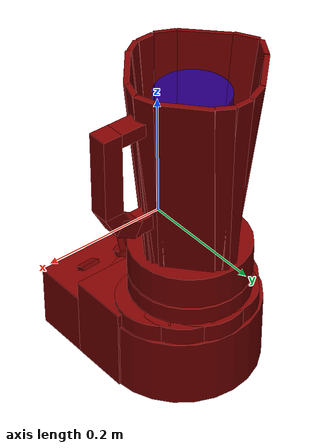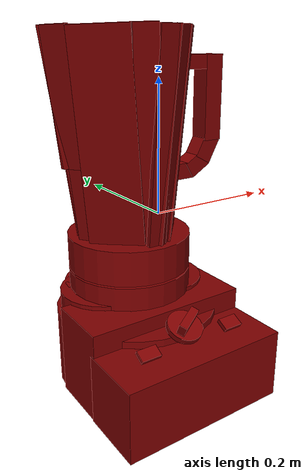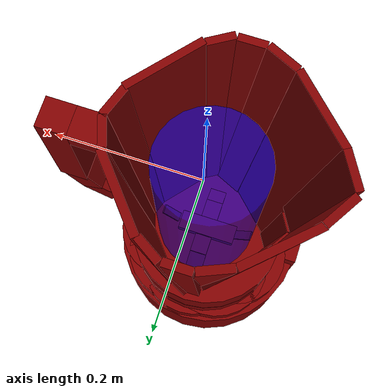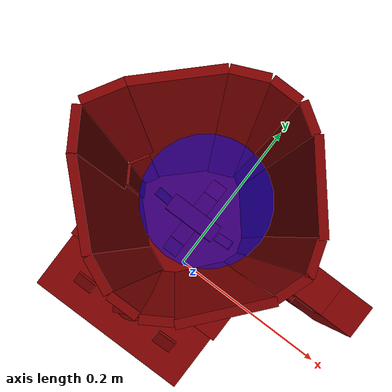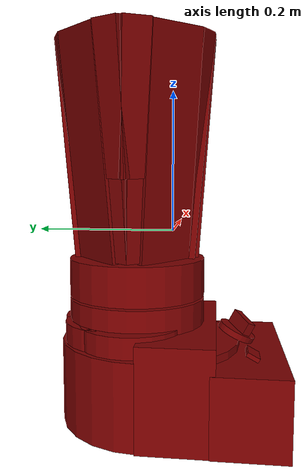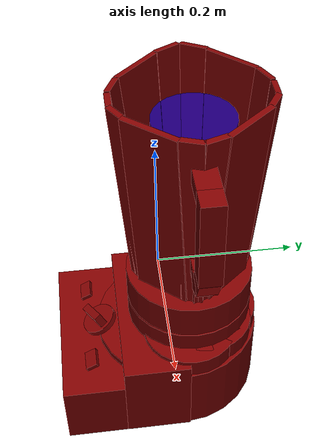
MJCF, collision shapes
<?xml version='1.0' encoding='UTF-8'?>
<mujoco model="model">
  <option timestep="0.0005" gravity="0.0 0.0 -9.81"/>
  <compiler angle="radian"/>
  <asset>
    <mesh file="visuals/blade.obj" name="blade_vis"/>
    <mesh file="visuals/Body001.obj" name="Body001_vis"/>
    <mesh file="visuals/knob_speed.obj" name="knob_speed_vis"/>
    <mesh file="visuals/pitcher.obj" name="pitcher_vis"/>
    <mesh file="visuals/pitcher_main.obj" name="pitcher_main_vis"/>
    <mesh file="visuals/power_button.obj" name="power_button_vis"/>
    <mesh file="visuals/pulse_button.obj" name="pulse_button_vis"/>
    <texture file="visuals/T_BC001.png" name="Body001_material" type="2d"/>
    <material name="Body001_material" rgba="1 1 1 1.0" texture="Body001_material" shininess="0.141421377658844" specular="0.33333333333333337"/>
    <texture file="visuals/T_BC001.png" name="knob_speed_material" type="2d"/>
    <material name="knob_speed_material" rgba="1 1 1 1.0" texture="knob_speed_material" shininess="0.141421377658844" specular="0.33333333333333337"/>
    <texture file="visuals/T_BC001.png" name="pitcher_material" type="2d"/>
    <material name="pitcher_material" rgba="1 1 1 1.0" texture="pitcher_material" shininess="0.141421377658844" specular="0.33333333333333337"/>
    <texture file="visuals/T_BC001.png" name="blade_material" type="2d"/>
    <material name="blade_material" rgba="1 1 1 1.0" texture="blade_material" shininess="0.141421377658844" specular="0.33333333333333337"/>
    <texture file="visuals/T_BC001.png" name="pitcher_main_material" type="2d"/>
    <material name="pitcher_main_material" rgba="1 1 1 0.699999988079071" texture="pitcher_main_material" shininess="0.8264863044023514" specular="0.7872340339187474"/>
    <texture file="visuals/T_BC001.png" name="power_button_material" type="2d"/>
    <material name="power_button_material" rgba="1 1 1 1.0" texture="power_button_material" shininess="0.141421377658844" specular="0.33333333333333337"/>
    <texture file="visuals/T_BC001.png" name="pulse_button_material" type="2d"/>
    <material name="pulse_button_material" rgba="1 1 1 1.0" texture="pulse_button_material" shininess="0.141421377658844" specular="0.33333333333333337"/>
  </asset>
  <default>
    <default class="visual">
      <geom conaffinity="0" contype="0" group="1" type="mesh"/>
    </default>
    <default class="collision">
      <geom group="0" rgba="0.5 0 0 0.5" density="1" solref="0.001 1" solimp="0.998 0.998 0.001"/>
    </default>
    <default class="spawn">
      <geom group="0" rgba="1 1 1 0.5" contype="0" conaffinity="0"/>
      <site group="0" rgba="1 1 1 0.5"/>
    </default>
    <default class="region">
      <geom group="1" conaffinity="0" contype="0" rgba="0 1 0 0" mass="0"/>
    </default>
  </default>
  <worldbody>
    <body>
      <body name="object">
        <geom mesh="Body001_vis" type="mesh" solimp="0.998 0.998 0.001" solref="0.001 1" friction="0.95 0.3 0.1" class="visual" material="Body001_material"/>
        <geom type="box" pos="-0.02199307 -0.01426714 -0.19971108" size="0.12968866527080536 0.05051147937774658 0.07040132582187653" quat="1.0 0.0 0.0 0.0" class="collision"/>
        <geom type="box" pos="-0.02279170 -0.10773172 -0.21642616" size="0.1301640272140503 0.05060109868645668 0.053686242550611496" quat="1.0 0.0 0.0 0.0" class="collision"/>
        <geom type="cylinder" pos="-0.02201305 0.04989900 -0.13258525" size="0.09668879210948944 0.03932907059788704" quat="1.0 0.0 0.0 0.0" class="collision"/>
        <geom type="cylinder" pos="-0.02185263 0.02982562 -0.21110181" size="0.1277042180299759 0.059179969131946564" quat="1.0 0.0 0.0 0.0" class="collision"/>
        <geom type="cylinder" pos="-0.06508007 0.05195520 -0.15638965" size="0.07243027538061142 0.033565230667591095" quat="1.0 0.0 0.0 0.0" class="collision"/>
        <geom type="cylinder" pos="-0.01597317 0.08287974 -0.15638965" size="0.07243027538061142 0.033565230667591095" quat="1.0 0.0 0.0 0.0" class="collision"/>
        <geom type="cylinder" pos="0.00944537 0.07108207 -0.15638965" size="0.07243027538061142 0.033565230667591095" quat="1.0 0.0 0.0 0.0" class="collision"/>
        <geom type="cylinder" pos="0.02916410 0.04479512 -0.15638965" size="0.07243027538061142 0.033565230667591095" quat="1.0 0.0 0.0 0.0" class="collision"/>
        <geom type="cylinder" pos="-0.04529861 0.07605683 -0.15638965" size="0.07243027538061142 0.033565230667591095" quat="1.0 0.0 0.0 0.0" class="collision"/>
        <body name="knob_speed">
          <joint axis="0.0 0.42261821031570435 -0.9063078165054321" pos="-0.01949416 -0.09858876 -0.13575610" limited="true" name="knob_speed_joint" range="0.0 4.1887902047863905" type="hinge" damping="0.05" armature="0.001"/>
          <geom mesh="knob_speed_vis" type="mesh" solimp="0.998 0.998 0.001" solref="0.001 1" friction="0.95 0.3 0.1" class="visual" material="knob_speed_material"/>
          <geom type="cylinder" pos="-0.01937991 -0.09404569 -0.14283491" size="0.026953713968396187 0.004453835543245077" quat="0.9746725559234619 0.22363674640655518 -4.965733631128541e-17 -1.5369836527898264e-24" class="collision"/>
          <geom class="collision" type="box" pos="-0.01910026 -0.10073258 -0.13214472" size="0.0061064972542226315 0.020651644095778465 0.011173461563885212" quat="0.8418465256690979 0.2161499410867691 0.09332498162984848 -0.4856584072113037" name="knob_speed_main"/>
        </body>
        <body name="pitcher">
          <geom mesh="pitcher_vis" type="mesh" solimp="0.998 0.998 0.001" solref="0.001 1" friction="0.95 0.3 0.1" class="visual" material="pitcher_material"/>
          <geom class="collision" type="box" pos="0.09629673 0.05202537 0.21673198" size="0.02094653993844986 0.016030292958021164 0.010851765982806683" quat="1.0 0.0 0.0 0.0" name="pitcher_handle_0"/>
          <geom class="collision" type="box" pos="0.07794306 0.05186071 0.04688044" size="0.017213819548487663 0.013093107379972935 0.012797565199434757" quat="1.0 0.0 0.0 0.0" name="pitcher_handle_1"/>
          <geom class="collision" type="box" pos="0.13286267 0.05202537 0.16014906" size="0.015919027850031853 0.016030292958021164 0.06743469834327698" quat="1.0 0.0 0.0 0.0" name="pitcher_handle_2"/>
          <geom class="collision" type="box" pos="0.12502524 0.05173888 0.08015375" size="0.020866841077804565 0.014718655496835709 0.014991585165262222" quat="0.8585997819900513 -6.927193485495309e-09 -0.512646496295929 -1.6028577576321368e-08" name="pitcher_handle_3"/>
          <geom type="cylinder" pos="-0.02201305 0.04989900 -0.06326365" size="0.09668877720832825 0.02689594402909279" quat="1.0 0.0 0.0 0.0" class="collision"/>
          <geom class="collision" type="box" pos="0.10477706 0.05173888 0.05577364" size="0.0190419964492321 0.014718655496835709 0.013767176307737827" quat="0.9641115069389343 7.396467438525178e-09 -0.26549768447875977 1.711440766882788e-08" name="pitcher_handle_4"/>
          <body name="blade">
            <geom mesh="blade_vis" type="mesh" solimp="0.998 0.998 0.001" solref="0.001 1" friction="0.95 0.3 0.1" class="visual" material="blade_material"/>
            <geom type="box" pos="-0.02282389 0.05254437 -0.01838473" size="0.03555736690759659 0.011566841043531895 0.005374473053961992" quat="1.0 0.0 0.0 0.0" class="collision"/>
            <geom type="box" pos="-0.02116509 0.02893147 -0.01775584" size="0.010374368168413639 0.011566841043531895 0.0021979371085762978" quat="1.0 0.0 0.0 0.0" class="collision"/>
            <geom type="box" pos="-0.02116509 0.07589483 -0.01775584" size="0.010374368168413639 0.011566841043531895 0.0021979371085762978" quat="1.0 0.0 0.0 0.0" class="collision"/>
            <geom type="box" pos="-0.02116509 0.09679450 -0.02312628" size="0.010374367237091064 0.012277994304895401 0.0011200300650671124" quat="0.9813559651374817 -0.19219909608364105 -0.0 0.0" class="collision"/>
            <geom type="box" pos="-0.02116509 0.00890204 -0.02217177" size="0.010374367237091064 0.009923008270561695 0.0011200300650671124" quat="0.9813559651374817 0.19219909608364105 0.0 0.0" class="collision"/>
            <geom type="box" pos="-0.06797011 0.05137453 -0.00512339" size="0.013877377845346928 0.0055869086645543575 0.001118509448133409" quat="0.9225588440895081 0.0 0.3858564496040344 0.0" class="collision"/>
            <geom type="box" pos="0.02509247 0.05137453 -0.00512339" size="0.013877379707992077 0.0055869086645543575 0.001118509448133409" quat="0.9225588440895081 0.0 -0.3858564496040344 0.0" class="collision"/>
          </body>
          <body name="pitcher_main">
            <geom class="region" type="cylinder" size="0.05791444703936577 0.11232888698577881" pos="-0.02077075 0.05404016 0.12025465" rgba="0 0 1 0.5" name="reg_int"/>
            <geom mesh="pitcher_main_vis" type="mesh" solimp="0.998 0.998 0.001" solref="0.001 1" friction="0.95 0.3 0.1" class="visual" material="pitcher_main_material"/>
            <geom type="box" pos="-0.08440144 0.10650524 0.11646234" size="0.042045958340168 0.004149169195443392 0.1530502587556839" quat="0.9263641834259033 -0.04800304025411606 -0.036923766136169434 0.3717280924320221" class="collision"/>
            <geom type="box" pos="-0.12730362 0.06677897 0.17227225" size="0.01971113495528698 0.004149168264120817 0.09649276733398438" quat="0.8696958422660828 -0.04780135676264763 -0.04569670185446739 0.4891379475593567" class="collision"/>
            <geom type="box" pos="-0.10518152 0.06182063 0.02139261" size="0.012013556435704231 0.004149165935814381 0.055805500596761703" quat="0.8699575662612915 -0.04277625307440758 -0.04287014156579971 0.4893936812877655" class="collision"/>
            <geom type="box" pos="-0.04211553 0.13761025 0.11843667" size="0.01705811731517315 0.004149168264120817 0.1530502587556839" quat="0.9774184823036194 -0.05376477539539337 -0.027874834835529327 0.20244856178760529" class="collision"/>
            <geom type="box" pos="0.03500572 0.10650525 0.11646235" size="0.0420459620654583 0.00414917292073369 0.1530502587556839" quat="0.9058413505554199 -0.03774869069457054 0.01987173780798912 -0.42146363854408264" class="collision"/>
            <geom type="box" pos="-0.00247474 0.14193490 0.11669371" size="0.014213469810783863 0.004149169195443392 0.1530502885580063" quat="0.9606580138206482 -0.04039445519447327 0.013716344721615314 -0.27443811297416687" class="collision"/>
            <geom type="box" pos="-0.02368115 0.14614255 0.11669372" size="0.014213466085493565 0.004149169661104679 0.1530502885580063" quat="0.9990887641906738 -0.042605455964803696 0.0021506804041564465 -0.0013561727246269584" class="collision"/>
            <geom type="box" pos="0.06354436 0.06296573 0.11623319" size="0.01606355421245098 0.00414917292073369 0.1530502885580063" quat="0.8138395547866821 -0.03349398449063301 0.02641974203288555 -0.579521656036377" class="collision"/>
            <geom type="box" pos="-0.08440145 -0.00289365 0.11646233" size="0.042045958340168 0.004149169195443392 0.1530502587556839" quat="0.9263641238212585 0.04800306260585785 -0.036923784762620926 -0.37172818183898926" class="collision"/>
            <geom type="box" pos="-0.12730362 0.03683261 0.17227225" size="0.01971113495528698 0.004149168264120817 0.09649276733398438" quat="0.8696958422660828 0.04780134931206703 -0.045696698129177094 -0.4891379475593567" class="collision"/>
            <geom type="box" pos="-0.10518152 0.04179097 0.02139261" size="0.012013556435704231 0.004149165935814381 0.055805500596761703" quat="0.8699575066566467 0.04277624562382698 -0.042870134115219116 -0.48939380049705505" class="collision"/>
            <geom type="box" pos="-0.04211553 -0.03399868 0.11843667" size="0.01705811731517315 0.004149168264120817 0.1530502587556839" quat="0.9774184823036194 0.05376475676894188 -0.02787482552230358 -0.2024485170841217" class="collision"/>
            <geom type="box" pos="0.03500572 -0.00289367 0.11646235" size="0.0420459620654583 0.00414917292073369 0.1530502587556839" quat="0.9058413505554199 0.03774869069457054 0.01987173594534397 0.42146363854408264" class="collision"/>
            <geom type="box" pos="-0.00247474 -0.03832332 0.11669371" size="0.014213469810783863 0.004149169195443392 0.1530502885580063" quat="0.9606580138206482 0.040394458919763565 0.013716345652937889 0.27443811297416687" class="collision"/>
            <geom type="box" pos="-0.02368115 -0.04253097 0.11669371" size="0.014213466085493565 0.004149169661104679 0.1530502885580063" quat="0.9990887641906738 0.04260546341538429 0.002150680171325803 0.001356172258965671" class="collision"/>
            <geom type="box" pos="0.06354436 0.04064585 0.11623319" size="0.01606355421245098 0.00414917292073369 0.1530502885580063" quat="0.8138395547866821 0.03349398449063301 0.026419747620821 0.579521656036377" class="collision"/>
          </body>
        </body>
        <body name="power_button">
          <joint axis="0.0 0.4226182997226715 -0.9063078165054321" pos="0.05295218 -0.11072256 -0.15263854" limited="true" name="power_button_joint" range="0.0 0.003" type="slide" damping="1" frictionloss="1" armature=".01" stiffness="1" springref="-0.1"/>
          <geom mesh="power_button_vis" type="mesh" solimp="0.998 0.998 0.001" solref="0.001 1" friction="0.95 0.3 0.1" class="visual" material="power_button_material"/>
          <geom class="collision" type="box" pos="0.05247067 -0.11123342 -0.15138203" size="0.015535996295511723 0.009651546366512775 0.0032402225770056248" quat="0.969495415687561 0.24482029676437378 0.009978671558201313 0.00648893415927887" name="power_button_main"/>
        </body>
        <body name="pulse_button">
          <joint axis="-5.615260167215187e-18 0.4226182997226715 -0.9063078165054321" pos="-0.09323169 -0.11077095 -0.15263073" limited="true" name="pulse_button_joint" range="0.0 0.003" type="slide" damping="1" frictionloss="1" armature=".01" stiffness="1" springref="-0.1"/>
          <geom mesh="pulse_button_vis" type="mesh" solimp="0.998 0.998 0.001" solref="0.001 1" friction="0.95 0.3 0.1" class="visual" material="pulse_button_material"/>
          <geom class="collision" type="box" pos="-0.09355254 -0.11231460 -0.15147408" size="0.015483303926885128 0.008930300362408161 0.002988857915624976" quat="0.9694134593009949 0.2453550100326538 -0.0021198231261223555 -0.005826357286423445" name="pulse_button_main"/>
        </body>
        <geom class="region" name="reg_main" type="box" pos="-3.500000000933312e-08 1.4499999999306734e-07 1.700000000215418e-07" size="0.150444465 0.16125245500000002 0.2710285"/>
      </body>
      <site rgba="0 1 0 0" size="0.005" pos="-0.03334941 0.05179600 0.27355863" name="anchor_site"/>
    </body>
  </worldbody>
  <actuator>
    <motor name="knob_speed_joint_actuator" joint="knob_speed_joint" gear="10"/>
    <motor name="pitcher_joint_actuator" joint="pitcher_joint" gear="10"/>
    <motor name="power_button_joint_actuator" joint="power_button_joint" gear="0.5"/>
    <motor name="pulse_button_joint_actuator" joint="pulse_button_joint" gear="0.5"/>
  </actuator>
</mujoco>
